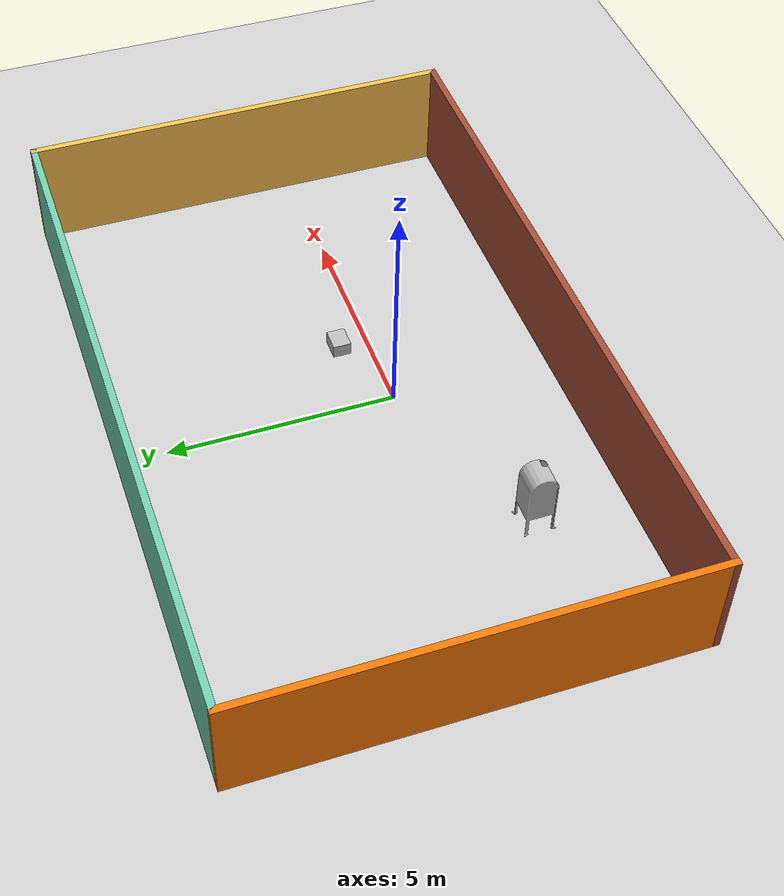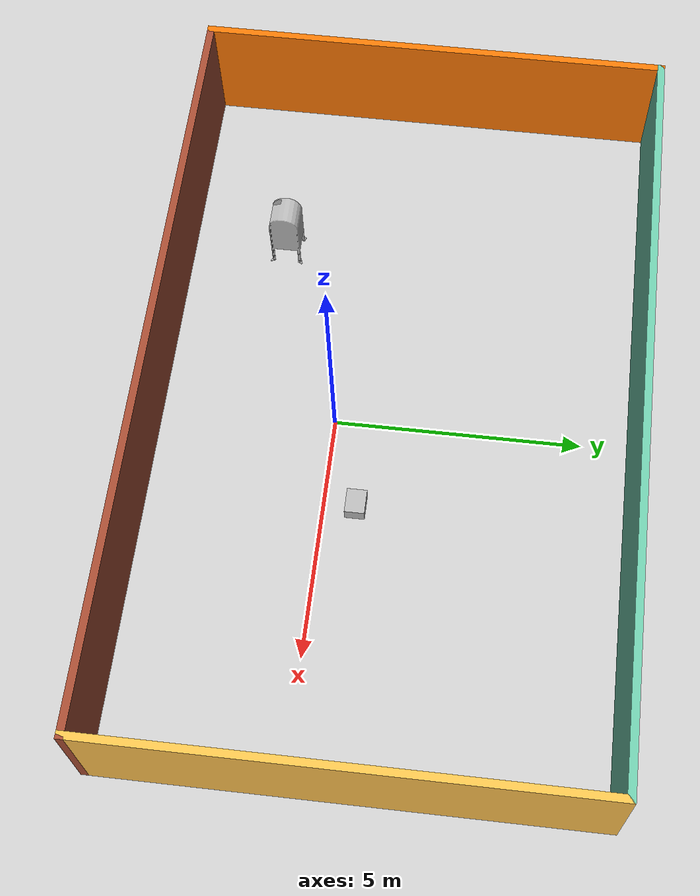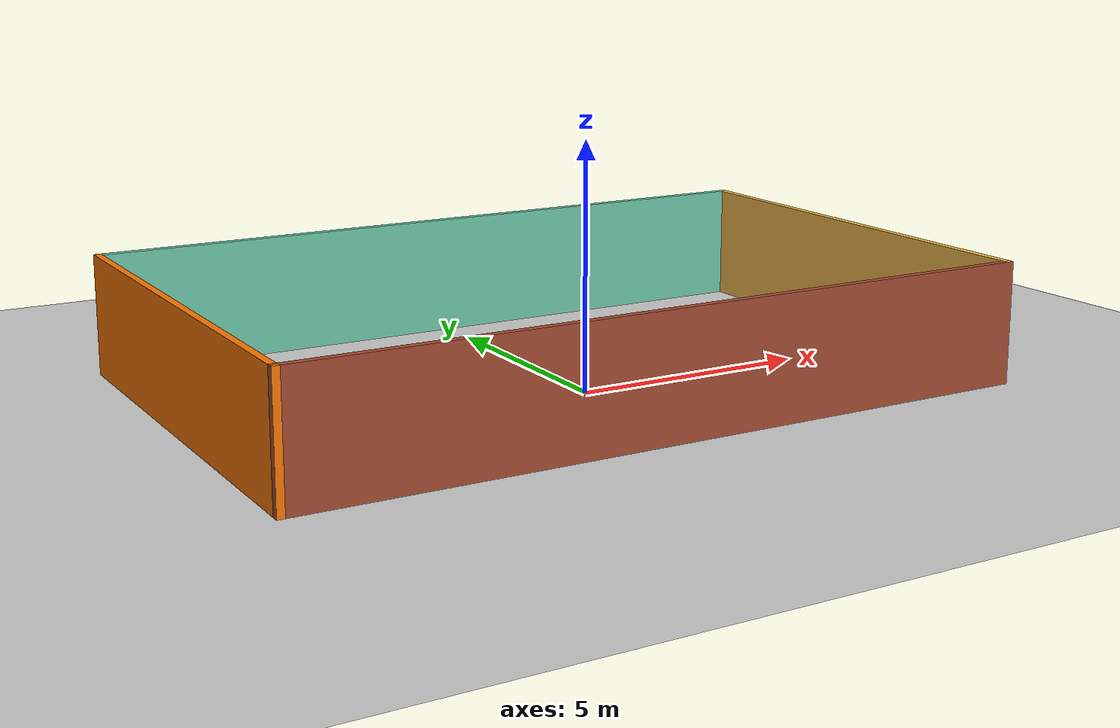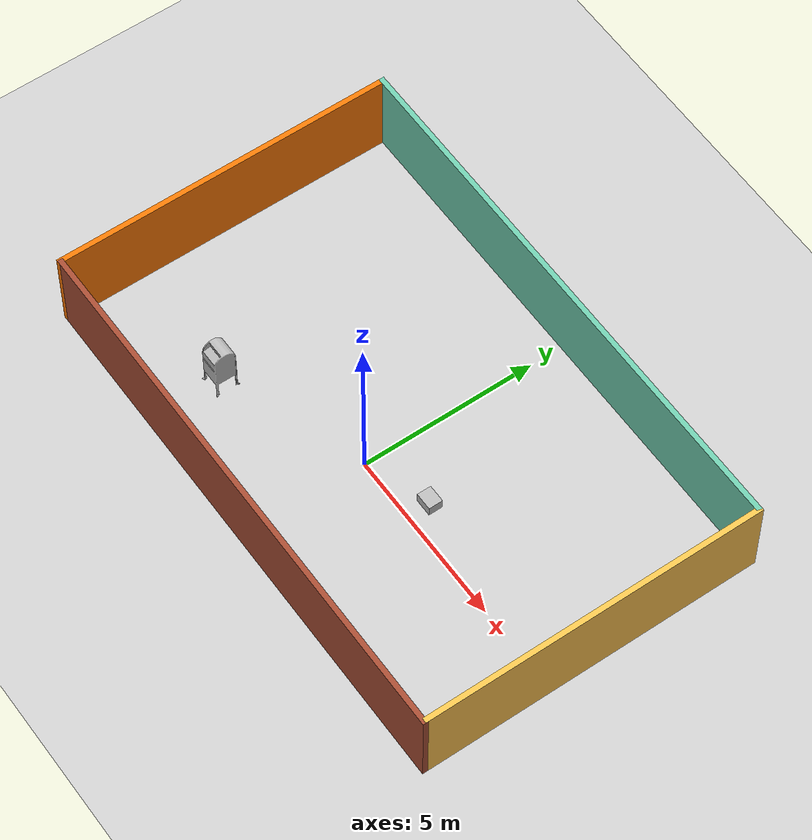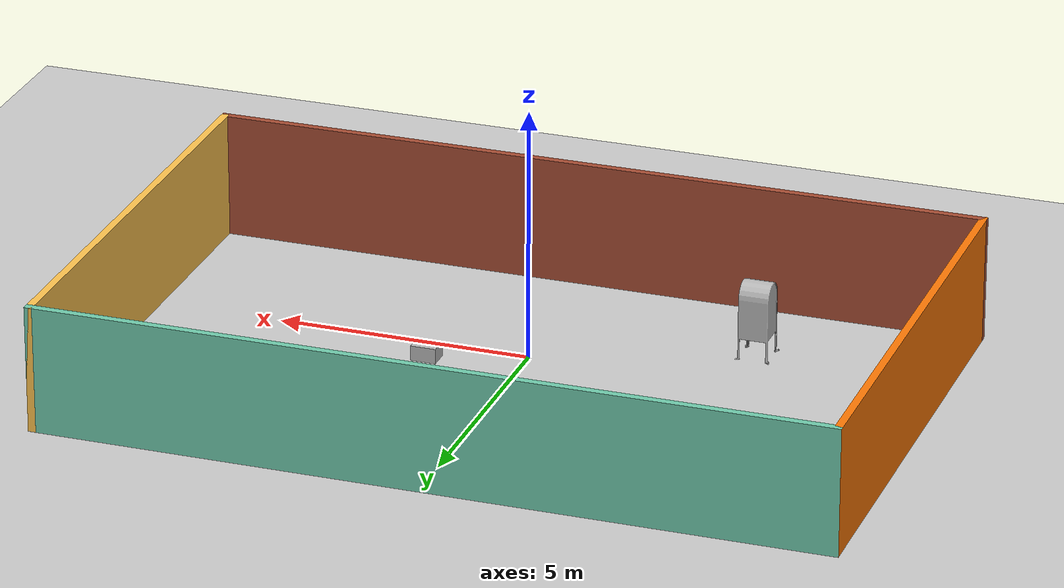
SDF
<sdf version="1.6">
 <world name="default">
  <light name="sun" type="directional">
   <pose>0 0 10 0 -0 0</pose>
   <diffuse>0.8 0.8 0.8 1</diffuse>
   <specular>0.2 0.2 0.2 1</specular>
   <attenuation>
    <range>1000</range>
    <constant>0.9</constant>
    <linear>0.01</linear>
    <quadratic>0.001</quadratic>
   </attenuation>
   <direction>-0.5 0.1 -0.9</direction>
  </light>
  <model name="ground_plane">
   <static>1</static>
   <link name="link">
    <collision name="collision">
     <geometry><plane><normal>0 0 1</normal><size>100 100</size></plane></geometry>
     <surface>
      <contact><collide_bitmask>65535</collide_bitmask></contact>
      <friction><ode><mu>100</mu><mu2>50</mu2></ode></friction>
     </surface>
    </collision>
    <visual name="visual">
     <cast_shadows>0</cast_shadows>
     <geometry><plane><normal>0 0 1</normal><size>100 100</size></plane></geometry>
     <material>
      <script><uri>file://media/materials/scripts/gazebo.material</uri><name>Gazebo/Grey</name></script>
     </material>
    </visual>
   </link>
  </model>
  <gravity>0 0 -9.8</gravity>
  <magnetic_field>6e-06 2.3e-05 -4.2e-05</magnetic_field>
  <atmosphere type="adiabatic"/>
  <physics name="default_physics" default="0" type="ode">
   <max_step_size>0.001</max_step_size>
   <real_time_factor>1</real_time_factor>
   <real_time_update_rate>1000</real_time_update_rate>
  </physics>
  <scene><ambient>0.4 0.4 0.4 1</ambient><background>0.7 0.7 0.7 1</background><shadows>1</shadows></scene>
  <audio><device>default</device></audio>
  <spherical_coordinates>
   <surface_model>EARTH_WGS84</surface_model>
   <latitude_deg>0</latitude_deg>
   <longitude_deg>0</longitude_deg>
   <elevation>0</elevation>
   <heading_deg>0</heading_deg>
  </spherical_coordinates>
  <model name="basic_building">
   <pose>-0.127915 1.1951 0 0 -0 0</pose>
   <link name="Wall_10">
    <collision name="Wall_10_Collision">
     <geometry><box><size>9.75 0.15 2.5</size></box></geometry>
     <pose>0 0 1.25 0 -0 0</pose>
    </collision>
    <visual name="Wall_10_Visual">
     <pose>0 0 1.25 0 -0 0</pose>
     <geometry><box><size>9.75 0.15 2.5</size></box></geometry>
     <material>
      <script><uri>file://media/materials/scripts/gazebo.material</uri><name>Gazebo/Grey</name></script>
      <ambient>1 0.764706 0.305882 1</ambient>
     </material>
     <meta><layer>0</layer></meta>
    </visual>
    <pose>7.675 0 0 0 -0 -1.5708</pose>
   </link>
   <link name="Wall_11">
    <collision name="Wall_11_Collision">
     <geometry><box><size>15.5 0.15 2.5</size></box></geometry>
     <pose>0 0 1.25 0 -0 0</pose>
    </collision>
    <visual name="Wall_11_Visual">
     <pose>0 0 1.25 0 -0 0</pose>
     <geometry><box><size>15.5 0.15 2.5</size></box></geometry>
     <material>
      <script><uri>file://media/materials/scripts/gazebo.material</uri><name>Gazebo/Bricks</name></script>
      <ambient>1 1 1 1</ambient>
     </material>
     <meta><layer>0</layer></meta>
    </visual>
    <pose>0 -4.8 0 0 -0 3.14159</pose>
   </link>
   <link name="Wall_12">
    <collision name="Wall_12_Collision">
     <geometry><box><size>9.75 0.15 2.5</size></box></geometry>
     <pose>0 0 1.25 0 -0 0</pose>
    </collision>
    <visual name="Wall_12_Visual">
     <pose>0 0 1.25 0 -0 0</pose>
     <geometry><box><size>9.75 0.15 2.5</size></box></geometry>
     <material>
      <script><uri>file://media/materials/scripts/gazebo.material</uri><name>Gazebo/Grey</name></script>
      <ambient>0.996078 0.47451 0.0196078 1</ambient>
     </material>
     <meta><layer>0</layer></meta>
    </visual>
    <pose>-7.675 0 0 0 -0 1.5708</pose>
   </link>
   <link name="Wall_9">
    <collision name="Wall_9_Collision">
     <geometry><box><size>15.5 0.15 2.5</size></box></geometry>
     <pose>0 0 1.25 0 -0 0</pose>
    </collision>
    <visual name="Wall_9_Visual">
     <pose>0 0 1.25 0 -0 0</pose>
     <geometry><box><size>15.5 0.15 2.5</size></box></geometry>
     <material>
      <script><uri>file://media/materials/scripts/gazebo.material</uri><name>Gazebo/Grey</name></script>
      <ambient>0.435294 0.796078 0.67451 1</ambient>
     </material>
     <meta><layer>0</layer></meta>
    </visual>
    <pose>0 4.8 0 0 -0 0</pose>
   </link>
   <static>1</static>
  </model>
  <model name="cardboard_box">
   <pose>1.81068 0.648287 0.149 0 -0 0</pose>
   <link name="link">
    <inertial>
     <mass>2</mass>
     <inertia>
      <ixx>0.0416667</ixx>
      <ixy>0</ixy>
      <ixz>0</ixz>
      <iyy>0.0566667</iyy>
      <iyz>0</iyz>
      <izz>0.0683333</izz>
     </inertia>
    </inertial>
    <collision name="collision">
     <geometry><box><size>0.5 0.4 0.3</size></box></geometry>
     <surface>
      <friction><ode><mu>1</mu><mu2>1</mu2></ode></friction>
      <contact><ode><kp>1e+07</kp><kd>1</kd><min_depth>0.001</min_depth><max_vel>0.1</max_vel></ode></contact>
     </surface>
    </collision>
    <visual name="visual">
     <pose>0 0 -0.15 0 -0 0</pose>
     <geometry>
      <mesh><uri>model://cardboard_box/meshes/cardboard_box.dae</uri><scale>1.25932 1.00745 0.755591</scale></mesh>
     </geometry>
    </visual>
   </link>
  </model>
  <model name="postbox">
   <static>1</static>
   <link name="link">
    <collision name="collision">
     <geometry><mesh><uri>model://postbox/meshes/postbox.dae</uri></mesh></geometry>
    </collision>
    <visual name="visual"><geometry><mesh><uri>model://postbox/meshes/postbox.dae</uri></mesh></geometry></visual>
   </link>
   <pose>-4.02821 -1.53573 0 0 -0 0</pose>
  </model>
 </world>
</sdf>
